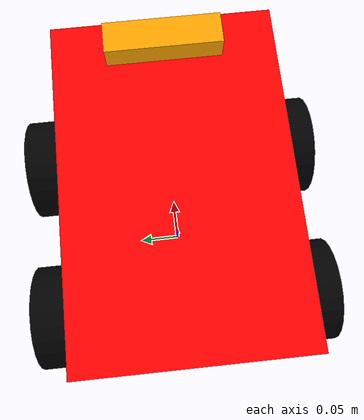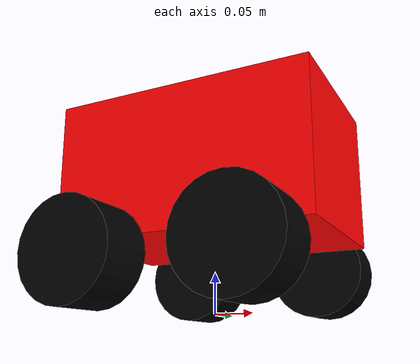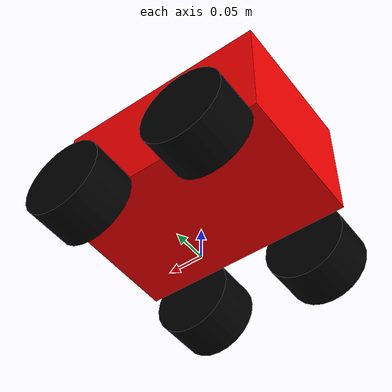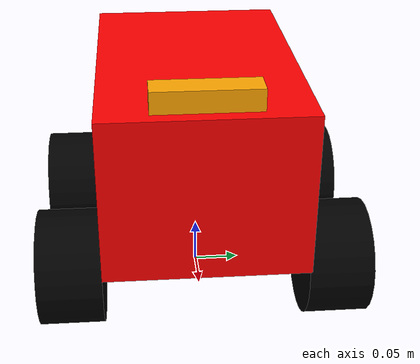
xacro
<?xml version="1.0"?>
<robot xmlns:xacro="http://www.ros.org/wiki/xacro" name="mars_robot">
<xacro:include filename="mars_robot.gazebo" />

<ros2_control name="mars_robot_control" type="system">
        <hardware>
                <plugin>fake_components/GenericSystem</plugin>
                <param name="fake_sensor_commands">false</param>
                <param name="state_following_offset">0.0</param>
        </hardware>
        <joint name="front_left_wheel_joint">
        <command_interface name="velocity">
                <param name="min">-1</param>
                <param name="max">1</param>
        </command_interface>
        <state_interface name="position"/>
        <state_interface name="velocity"/>
        </joint>
        <joint name="front_right_wheel_joint">
        <command_interface name="velocity">
                <param name="min">-1</param>
                <param name="max">1</param>
        </command_interface>
        <state_interface name="position"/>
        <state_interface name="velocity"/>
        </joint>
        <joint name="rear_left_wheel_joint">
        <command_interface name="velocity">
                <param name="min">-1</param>
                <param name="max">1</param>
        </command_interface>
        <state_interface name="position"/>
        <state_interface name="velocity"/>
        </joint>
        <joint name="rear_right_wheel_joint">
        <command_interface name="velocity">
                <param name="min">-1</param>
                <param name="max">1</param>
        </command_interface>
        <state_interface name="position"/>
        <state_interface name="velocity"/>
        </joint>
</ros2_control>

<!-- This first link, "base_footprint" is empty-->
<link name="base_footprint"></link>

<link name="base_link">
        <visual>
                <origin xyz="0 0 0.1115" rpy="0.0 0.0 0.0"/>
                <geometry>
                        <box size="0.326 0.2142 0.175"/>
                </geometry>
                <material name="red">
                        <color rgba="1.0 0.0 0.0 1.0"/>
                </material>
        </visual>
        <inertial>
                <mass value="4.42"/>
                <origin rpy="0 0 0" xyz="0 0 0" />
                <inertia
                        ixx="0.03295736167" ixy="0.0" ixz="0.0"
                        iyy="0.05523416167" iyz="0.0"
                        izz="0.05601318667" />
        </inertial>
        <collision>
                <origin xyz="0 0 0.1115" rpy="0 0 0"/>
                <geometry>
                        <box size="0.326 0.2142 0.300"/>
                </geometry>
        </collision>
</link>

<!-- Fixed joint from "base_footprint" to "base"-->
<joint name="base_joint" type="fixed">
        <origin xyz="0.0 0.0 0.0615" rpy="0 0 0"/>
        <parent link="base_footprint"/>
        <child link="base_link"/>
</joint>

<link name="front_left_wheel_link">
        <visual>
                <origin rpy="0 0 0" xyz="0 0 0" />
                <geometry>
                        <cylinder length="0.068" radius="0.0615" />
                </geometry>
                <material name="color_wheel">
                <color rgba="0.0 0.0 0.0 1.0"/>
                </material>
        </visual>
        <collision>
                <origin rpy="0 0 0" xyz="0 0 0" />
                <geometry>
                        <cylinder length="0.068" radius="0.0615" />
                </geometry>
        </collision>
        <inertial>
        <mass value="0.176"/>
        <inertia ixx="2.87466667e-04" ixy="0.0" ixz="0.0"
                        iyy="2.87466667e-04" iyz="0.0"
                        izz="3.0184e-05" />

        </inertial>
</link>

<joint name="front_left_wheel_joint" type="continuous">
        <parent link="base_link"/>
        <child link="front_left_wheel_link"/>
        <origin rpy="1.5708 0 0" xyz="0.0955 0.141 0"/>
</joint>

<link name="front_right_wheel_link">
        <visual>
                <origin rpy="0 0 0" xyz="0 0 0" />
                <geometry>
                        <cylinder length="0.068" radius="0.0615" />
                </geometry>
                <material name="color_wheel">
                <color rgba="0.0 0.0 0.0 1.0"/>
                </material>
        </visual>
        <collision>
                <origin rpy="0 0 0" xyz="0 0 0" />
                <geometry>
                        <cylinder length="0.068" radius="0.0615" />
                </geometry>
        </collision>
        <inertial>
        <mass value="0.176"/>
        <inertia ixx="2.87466667e-04" ixy="0.0" ixz="0.0"
                        iyy="2.87466667e-04" iyz="0.0"
                        izz="3.0184e-05" />

        </inertial>
</link>

<joint name="front_right_wheel_joint" type="continuous">
        <parent link="base_link"/>
        <child link="front_right_wheel_link"/>
        <origin rpy="1.5708 0 0" xyz="0.0955 -0.141 0"/>
        <implicitSpringDamper>1</implicitSpringDamper>
</joint>

<link name="rear_left_wheel_link">
        <visual>
                <origin rpy="0 0 0" xyz="0 0 0" />
                <geometry>
                        <cylinder length="0.068" radius="0.0615" />
                </geometry>
                <material name="color_wheel">
                <color rgba="0.0 0.0 0.0 1.0"/>
                </material>
        </visual>
        <collision>
                <origin rpy="0 0 0" xyz="0 0 0" />
                        <geometry>
                        <cylinder length="0.068" radius="0.0615" />
                </geometry>
        </collision>
        <inertial>
        <mass value="0.176"/>
        <inertia ixx="2.87466667e-04" ixy="0.0" ixz="0.0"
                        iyy="2.87466667e-04" iyz="0.0"
                        izz="3.0184e-05" />

        </inertial>
</link>

<joint name="rear_left_wheel_joint" type="continuous">
        <parent link="base_link"/>
        <child link="rear_left_wheel_link"/>
        <origin rpy="1.5708 0 0" xyz="-0.0955 0.141 0"/>
        <implicitSpringDamper>1</implicitSpringDamper>
</joint>

 <link name="rear_right_wheel_link">
        <visual>
                <origin rpy="0 0 0" xyz="0 0 0" />
                <geometry>
                        <cylinder length="0.068" radius="0.0615" />
                </geometry>
                <material name="color_wheel">
                <color rgba="0.0 0.0 0.0 1.0"/>
                </material>
        </visual>
        <collision>
                <origin rpy="0 0 0" xyz="0 0 0" />
                <geometry>
                        <cylinder length="0.068" radius="0.0615" />
                </geometry>
        </collision>
        <inertial>
        <mass value="0.176"/>
        <inertia ixx="2.87466667e-04" ixy="0.0" ixz="0.0"
                        iyy="2.87466667e-04" iyz="0.0"
                        izz="3.0184e-05" />

        </inertial>
</link>

<joint name="rear_right_wheel_joint" type="continuous">
        <parent link="base_link"/>
        <child link="rear_right_wheel_link"/>
        <origin rpy="1.5708 0 0" xyz="-0.0955 -0.141 0"/>
        <implicitSpringDamper>1</implicitSpringDamper>
</joint>

<!--IMU-->
<link name="imu_link">
        <inertial>
                <mass value="0.010" />
                <origin rpy="0 0 0" xyz="0 0 0" />
                <inertia ixx="1e-09" ixy="0.0" ixz="0.0" iyy="1e-09" iyz="0.0" izz="1e-09" />
        </inertial>
</link>

<joint name="imu_joint" type="fixed">
        <parent link="base_link" />
        <child link="imu_link" />
        <origin rpy="0 0 0" xyz="0.0495 0.01 0.0665" />
</joint>

 <!--CAMERA-->
<link name="camera_link">
        <visual>
                <geometry>
                        <box size="0.03 0.11 0.035"/>
                </geometry>
                <material name="color_cam">
                <color rgba="1.0 0.65 0.0 1.0"/>
                </material>
        </visual>
</link>

<joint name="camera_joint" type="fixed">
        <origin rpy="0 0 0" xyz="0.1335 0 0.2045" />
        <parent link="base_link" />
        <child link="camera_link" />
</joint>

<!-- generate an optical frame http://www.ros.org/reps/rep-0103.html#suffix-frames
      so that ros and opencv can operate on the camera frame correctly -->
<joint name="camera_optical_joint" type="fixed">
        <!-- these values have to be these values otherwise the gazebo camera image
        won't be aligned properly with the frame it is supposedly originating from -->
        <origin xyz="0 0 0" rpy="${-pi/2} 0 ${-pi/2}"/>
        <parent link="camera_link"/>
        <child link="camera_link_optical"/>
</joint>

<link name="camera_link_optical"></link>

</robot>
